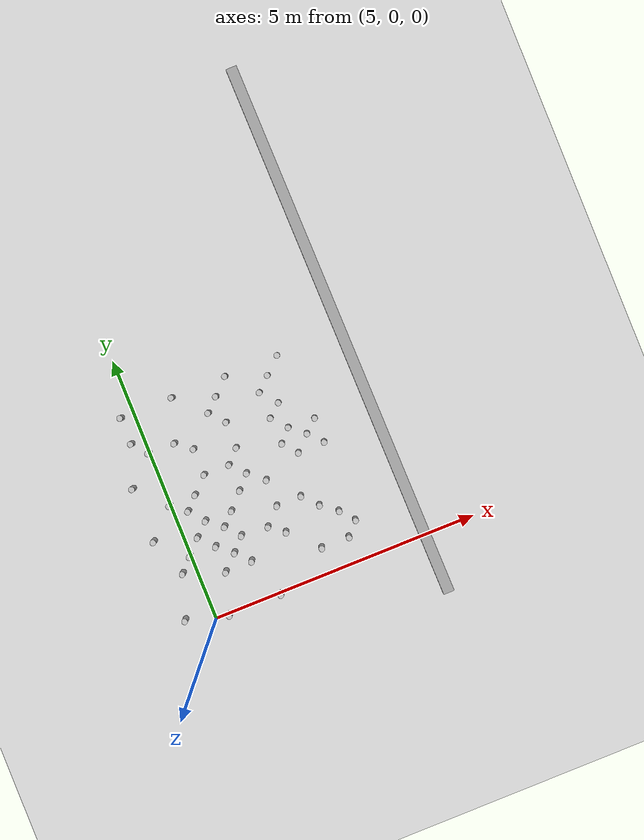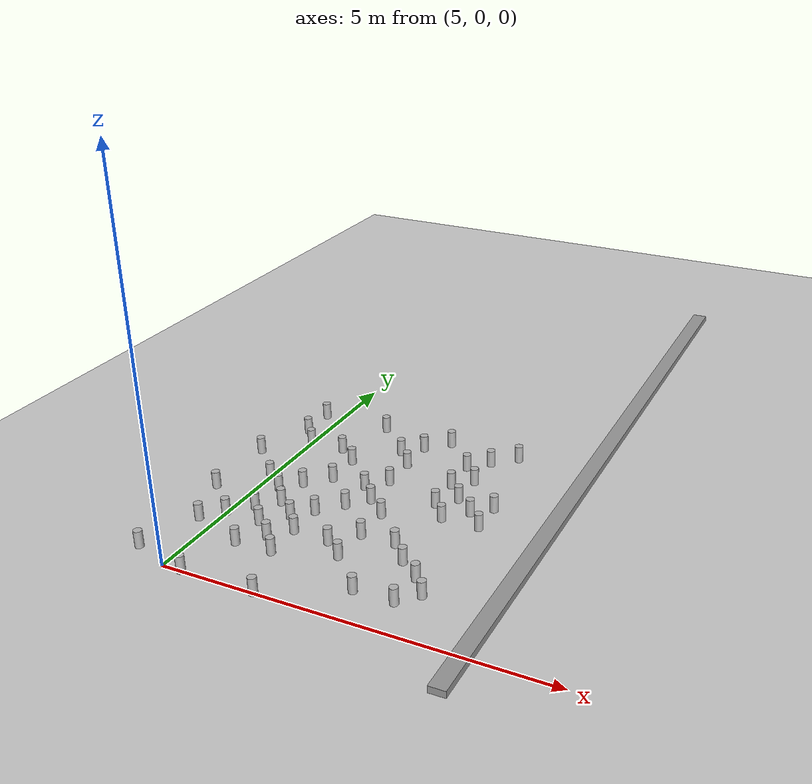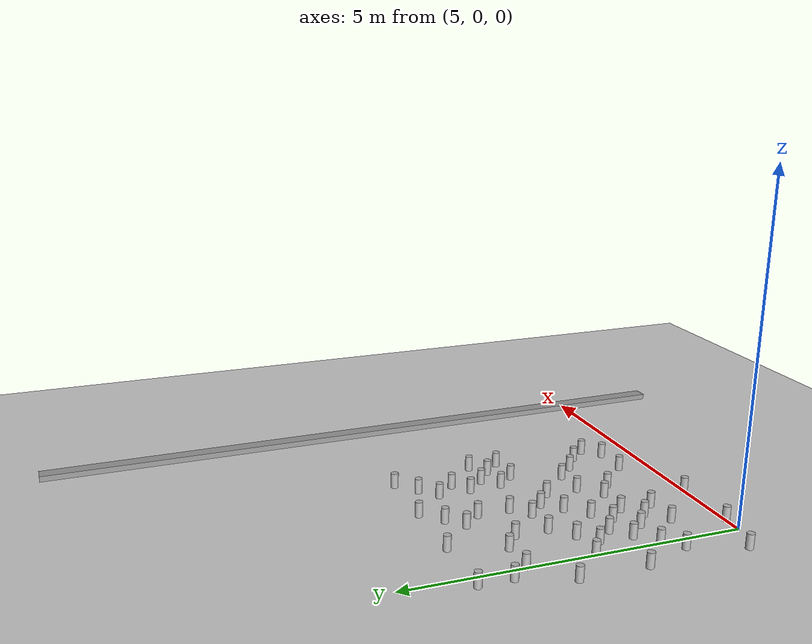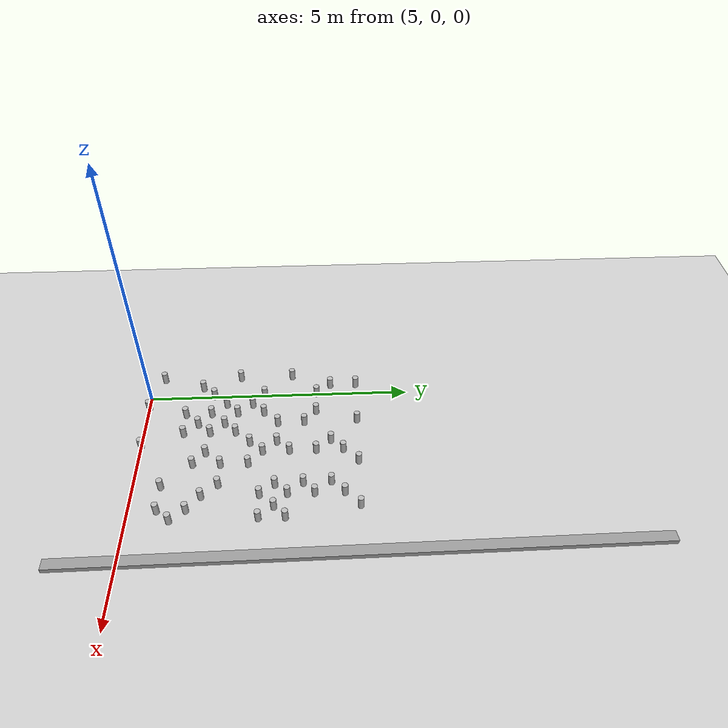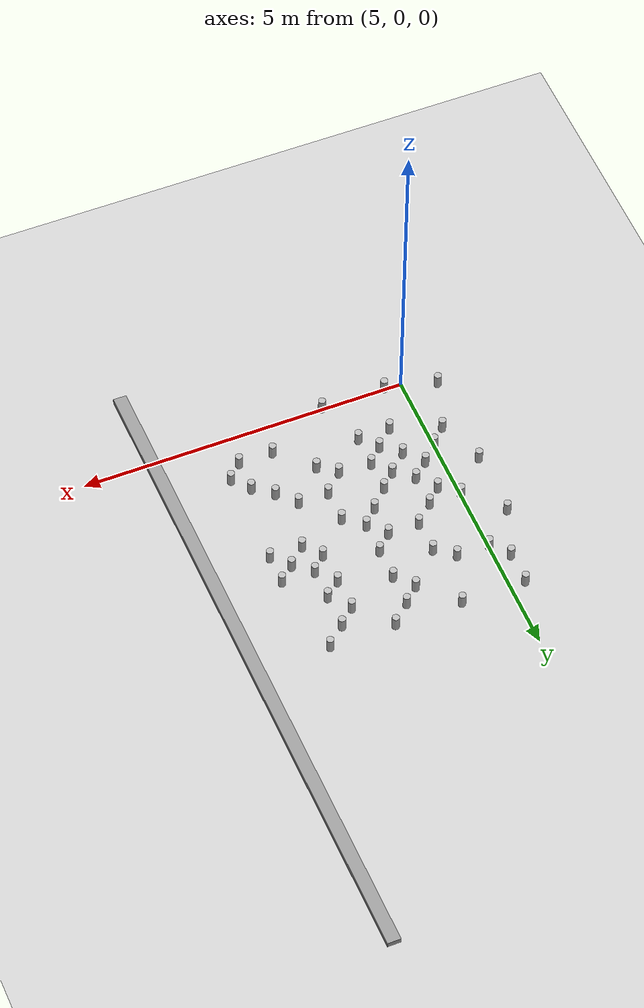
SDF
<sdf version="1.6">
 <world name="default">
  <model name="ground_plane">
   <static>1</static>
   <link name="link">
    <collision name="collision">
     <geometry><plane><normal>0 0 1</normal><size>100 100</size></plane></geometry>
     <surface><friction><ode><mu>100</mu><mu2>50</mu2></ode></friction></surface>
    </collision>
    <visual name="visual">
     <cast_shadows>0</cast_shadows>
     <geometry><plane><normal>0 0 1</normal><size>100 100</size></plane></geometry>
     <material>
      <script><uri>file://media/materials/scripts/gazebo.material</uri><name>Gazebo/Grey</name></script>
     </material>
    </visual>
   </link>
  </model>
  <model name="wall3">
   <static>1</static>
   <link name="link">
    <pose>0 0 0.42 0 -0 0</pose>
    <collision name="collision"><geometry><box><size>10 0.2 0.084</size></box></geometry></collision>
    <visual name="visual">
     <cast_shadows>0</cast_shadows>
     <geometry><box><size>10 0.2 0.084</size></box></geometry>
     <material>
      <script>
       <uri>model://grey_wall/materials/scripts</uri>
       <uri>model://grey_wall/materials/textures</uri>
       <name>vrc/grey_wall</name>
      </script>
     </material>
    </visual>
   </link>
   <pose>9.0 4.0 0 0 -0 -1.55905</pose>
  </model>
  <model name="can5.759015337364.0">
   <link name="link">
    <pose>0 0 0.115 0 -0 0</pose>
    <inertial>
     <mass>0.39</mass>
     <inertia><ixx>0.00058</ixx><ixy>0</ixy><ixz>0</ixz><iyy>0.00058</iyy><iyz>0</iyz><izz>0.00019</izz></inertia>
    </inertial>
    <collision name="collision">
     <geometry><cylinder><radius>0.055</radius><length>0.23</length></cylinder></geometry>
    </collision>
    <visual name="visual">
     <geometry><cylinder><radius>0.055</radius><length>0.23</length></cylinder></geometry>
     <material>
      <script>
       <uri>model://beer/materials/scripts</uri>
       <uri>model://beer/materials/textures</uri>
       <name>Beer/Diffuse</name>
      </script>
     </material>
    </visual>
   </link>
   <pose>5.75901533736 4.0 -2e-06 1e-06 0 -9.5e-05</pose>
  </model>
  <model name="can6.53.72370780713">
   <link name="link">
    <pose>0 0 0.115 0 -0 0</pose>
    <inertial>
     <mass>0.39</mass>
     <inertia><ixx>0.00058</ixx><ixy>0</ixy><ixz>0</ixz><iyy>0.00058</iyy><iyz>0</iyz><izz>0.00019</izz></inertia>
    </inertial>
    <collision name="collision">
     <geometry><cylinder><radius>0.055</radius><length>0.23</length></cylinder></geometry>
    </collision>
    <visual name="visual">
     <geometry><cylinder><radius>0.055</radius><length>0.23</length></cylinder></geometry>
     <material>
      <script>
       <uri>model://beer/materials/scripts</uri>
       <uri>model://beer/materials/textures</uri>
       <name>Beer/Diffuse</name>
      </script>
     </material>
    </visual>
   </link>
   <pose>6.5 3.72370780713 -2e-06 1e-06 0 -9.5e-05</pose>
  </model>
  <model name="can6.784772272632.0">
   <link name="link">
    <pose>0 0 0.115 0 -0 0</pose>
    <inertial>
     <mass>0.39</mass>
     <inertia><ixx>0.00058</ixx><ixy>0</ixy><ixz>0</ixz><iyy>0.00058</iyy><iyz>0</iyz><izz>0.00019</izz></inertia>
    </inertial>
    <collision name="collision">
     <geometry><cylinder><radius>0.055</radius><length>0.23</length></cylinder></geometry>
    </collision>
    <visual name="visual">
     <geometry><cylinder><radius>0.055</radius><length>0.23</length></cylinder></geometry>
     <material>
      <script>
       <uri>model://beer/materials/scripts</uri>
       <uri>model://beer/materials/textures</uri>
       <name>Beer/Diffuse</name>
      </script>
     </material>
    </visual>
   </link>
   <pose>6.78477227263 2.0 -2e-06 1e-06 0 -9.5e-05</pose>
  </model>
  <model name="can7.52.23811705391">
   <link name="link">
    <pose>0 0 0.115 0 -0 0</pose>
    <inertial>
     <mass>0.39</mass>
     <inertia><ixx>0.00058</ixx><ixy>0</ixy><ixz>0</ixz><iyy>0.00058</iyy><iyz>0</iyz><izz>0.00019</izz></inertia>
    </inertial>
    <collision name="collision">
     <geometry><cylinder><radius>0.055</radius><length>0.23</length></cylinder></geometry>
    </collision>
    <visual name="visual">
     <geometry><cylinder><radius>0.055</radius><length>0.23</length></cylinder></geometry>
     <material>
      <script>
       <uri>model://beer/materials/scripts</uri>
       <uri>model://beer/materials/textures</uri>
       <name>Beer/Diffuse</name>
      </script>
     </material>
    </visual>
   </link>
   <pose>7.5 2.23811705391 -2e-06 1e-06 0 -9.5e-05</pose>
  </model>
  <model name="can5.52.22546799315">
   <link name="link">
    <pose>0 0 0.115 0 -0 0</pose>
    <inertial>
     <mass>0.39</mass>
     <inertia><ixx>0.00058</ixx><ixy>0</ixy><ixz>0</ixz><iyy>0.00058</iyy><iyz>0</iyz><izz>0.00019</izz></inertia>
    </inertial>
    <collision name="collision">
     <geometry><cylinder><radius>0.055</radius><length>0.23</length></cylinder></geometry>
    </collision>
    <visual name="visual">
     <geometry><cylinder><radius>0.055</radius><length>0.23</length></cylinder></geometry>
     <material>
      <script>
       <uri>model://beer/materials/scripts</uri>
       <uri>model://beer/materials/textures</uri>
       <name>Beer/Diffuse</name>
      </script>
     </material>
    </visual>
   </link>
   <pose>5.5 2.22546799315 -2e-06 1e-06 0 -9.5e-05</pose>
  </model>
  <model name="can5.51.7250479158">
   <link name="link">
    <pose>0 0 0.115 0 -0 0</pose>
    <inertial>
     <mass>0.39</mass>
     <inertia><ixx>0.00058</ixx><ixy>0</ixy><ixz>0</ixz><iyy>0.00058</iyy><iyz>0</iyz><izz>0.00019</izz></inertia>
    </inertial>
    <collision name="collision">
     <geometry><cylinder><radius>0.055</radius><length>0.23</length></cylinder></geometry>
    </collision>
    <visual name="visual">
     <geometry><cylinder><radius>0.055</radius><length>0.23</length></cylinder></geometry>
     <material>
      <script>
       <uri>model://beer/materials/scripts</uri>
       <uri>model://beer/materials/textures</uri>
       <name>Beer/Diffuse</name>
      </script>
     </material>
    </visual>
   </link>
   <pose>5.5 1.7250479158 -2e-06 1e-06 0 -9.5e-05</pose>
  </model>
  <model name="can7.263469234763.0">
   <link name="link">
    <pose>0 0 0.115 0 -0 0</pose>
    <inertial>
     <mass>0.39</mass>
     <inertia><ixx>0.00058</ixx><ixy>0</ixy><ixz>0</ixz><iyy>0.00058</iyy><iyz>0</iyz><izz>0.00019</izz></inertia>
    </inertial>
    <collision name="collision">
     <geometry><cylinder><radius>0.055</radius><length>0.23</length></cylinder></geometry>
    </collision>
    <visual name="visual">
     <geometry><cylinder><radius>0.055</radius><length>0.23</length></cylinder></geometry>
     <material>
      <script>
       <uri>model://beer/materials/scripts</uri>
       <uri>model://beer/materials/textures</uri>
       <name>Beer/Diffuse</name>
      </script>
     </material>
    </visual>
   </link>
   <pose>7.26346923476 3.0 -2e-06 1e-06 0 -9.5e-05</pose>
  </model>
  <model name="can7.791522727644.0">
   <link name="link">
    <pose>0 0 0.115 0 -0 0</pose>
    <inertial>
     <mass>0.39</mass>
     <inertia><ixx>0.00058</ixx><ixy>0</ixy><ixz>0</ixz><iyy>0.00058</iyy><iyz>0</iyz><izz>0.00019</izz></inertia>
    </inertial>
    <collision name="collision">
     <geometry><cylinder><radius>0.055</radius><length>0.23</length></cylinder></geometry>
    </collision>
    <visual name="visual">
     <geometry><cylinder><radius>0.055</radius><length>0.23</length></cylinder></geometry>
     <material>
      <script>
       <uri>model://beer/materials/scripts</uri>
       <uri>model://beer/materials/textures</uri>
       <name>Beer/Diffuse</name>
      </script>
     </material>
    </visual>
   </link>
   <pose>7.79152272764 4.0 -2e-06 1e-06 0 -9.5e-05</pose>
  </model>
  <model name="can5.03.23023790909">
   <link name="link">
    <pose>0 0 0.115 0 -0 0</pose>
    <inertial>
     <mass>0.39</mass>
     <inertia><ixx>0.00058</ixx><ixy>0</ixy><ixz>0</ixz><iyy>0.00058</iyy><iyz>0</iyz><izz>0.00019</izz></inertia>
    </inertial>
    <collision name="collision">
     <geometry><cylinder><radius>0.055</radius><length>0.23</length></cylinder></geometry>
    </collision>
    <visual name="visual">
     <geometry><cylinder><radius>0.055</radius><length>0.23</length></cylinder></geometry>
     <material>
      <script>
       <uri>model://beer/materials/scripts</uri>
       <uri>model://beer/materials/textures</uri>
       <name>Beer/Diffuse</name>
      </script>
     </material>
    </visual>
   </link>
   <pose>5.0 3.23023790909 -2e-06 1e-06 0 -9.5e-05</pose>
  </model>
  <model name="can7.254135602160.5">
   <link name="link">
    <pose>0 0 0.115 0 -0 0</pose>
    <inertial>
     <mass>0.39</mass>
     <inertia><ixx>0.00058</ixx><ixy>0</ixy><ixz>0</ixz><iyy>0.00058</iyy><iyz>0</iyz><izz>0.00019</izz></inertia>
    </inertial>
    <collision name="collision">
     <geometry><cylinder><radius>0.055</radius><length>0.23</length></cylinder></geometry>
    </collision>
    <visual name="visual">
     <geometry><cylinder><radius>0.055</radius><length>0.23</length></cylinder></geometry>
     <material>
      <script>
       <uri>model://beer/materials/scripts</uri>
       <uri>model://beer/materials/textures</uri>
       <name>Beer/Diffuse</name>
      </script>
     </material>
    </visual>
   </link>
   <pose>7.25413560216 0.5 -2e-06 1e-06 0 -9.5e-05</pose>
  </model>
  <model name="can5.275226445652.0">
   <link name="link">
    <pose>0 0 0.115 0 -0 0</pose>
    <inertial>
     <mass>0.39</mass>
     <inertia><ixx>0.00058</ixx><ixy>0</ixy><ixz>0</ixz><iyy>0.00058</iyy><iyz>0</iyz><izz>0.00019</izz></inertia>
    </inertial>
    <collision name="collision">
     <geometry><cylinder><radius>0.055</radius><length>0.23</length></cylinder></geometry>
    </collision>
    <visual name="visual">
     <geometry><cylinder><radius>0.055</radius><length>0.23</length></cylinder></geometry>
     <material>
      <script>
       <uri>model://beer/materials/scripts</uri>
       <uri>model://beer/materials/textures</uri>
       <name>Beer/Diffuse</name>
      </script>
     </material>
    </visual>
   </link>
   <pose>5.27522644565 2.0 -2e-06 1e-06 0 -9.5e-05</pose>
  </model>
  <model name="can5.50.739224365142">
   <link name="link">
    <pose>0 0 0.115 0 -0 0</pose>
    <inertial>
     <mass>0.39</mass>
     <inertia><ixx>0.00058</ixx><ixy>0</ixy><ixz>0</ixz><iyy>0.00058</iyy><iyz>0</iyz><izz>0.00019</izz></inertia>
    </inertial>
    <collision name="collision">
     <geometry><cylinder><radius>0.055</radius><length>0.23</length></cylinder></geometry>
    </collision>
    <visual name="visual">
     <geometry><cylinder><radius>0.055</radius><length>0.23</length></cylinder></geometry>
     <material>
      <script>
       <uri>model://beer/materials/scripts</uri>
       <uri>model://beer/materials/textures</uri>
       <name>Beer/Diffuse</name>
      </script>
     </material>
    </visual>
   </link>
   <pose>5.5 0.739224365142 -2e-06 1e-06 0 -9.5e-05</pose>
  </model>
  <model name="can7.251097830661.5">
   <link name="link">
    <pose>0 0 0.115 0 -0 0</pose>
    <inertial>
     <mass>0.39</mass>
     <inertia><ixx>0.00058</ixx><ixy>0</ixy><ixz>0</ixz><iyy>0.00058</iyy><iyz>0</iyz><izz>0.00019</izz></inertia>
    </inertial>
    <collision name="collision">
     <geometry><cylinder><radius>0.055</radius><length>0.23</length></cylinder></geometry>
    </collision>
    <visual name="visual">
     <geometry><cylinder><radius>0.055</radius><length>0.23</length></cylinder></geometry>
     <material>
      <script>
       <uri>model://beer/materials/scripts</uri>
       <uri>model://beer/materials/textures</uri>
       <name>Beer/Diffuse</name>
      </script>
     </material>
    </visual>
   </link>
   <pose>7.25109783066 1.5 -2e-06 1e-06 0 -9.5e-05</pose>
  </model>
  <model name="can6.786869994941.5">
   <link name="link">
    <pose>0 0 0.115 0 -0 0</pose>
    <inertial>
     <mass>0.39</mass>
     <inertia><ixx>0.00058</ixx><ixy>0</ixy><ixz>0</ixz><iyy>0.00058</iyy><iyz>0</iyz><izz>0.00019</izz></inertia>
    </inertial>
    <collision name="collision">
     <geometry><cylinder><radius>0.055</radius><length>0.23</length></cylinder></geometry>
    </collision>
    <visual name="visual">
     <geometry><cylinder><radius>0.055</radius><length>0.23</length></cylinder></geometry>
     <material>
      <script>
       <uri>model://beer/materials/scripts</uri>
       <uri>model://beer/materials/textures</uri>
       <name>Beer/Diffuse</name>
      </script>
     </material>
    </visual>
   </link>
   <pose>6.78686999494 1.5 -2e-06 1e-06 0 -9.5e-05</pose>
  </model>
  <model name="can4.50.206467941657">
   <link name="link">
    <pose>0 0 0.115 0 -0 0</pose>
    <inertial>
     <mass>0.39</mass>
     <inertia><ixx>0.00058</ixx><ixy>0</ixy><ixz>0</ixz><iyy>0.00058</iyy><iyz>0</iyz><izz>0.00019</izz></inertia>
    </inertial>
    <collision name="collision">
     <geometry><cylinder><radius>0.055</radius><length>0.23</length></cylinder></geometry>
    </collision>
    <visual name="visual">
     <geometry><cylinder><radius>0.055</radius><length>0.23</length></cylinder></geometry>
     <material>
      <script>
       <uri>model://beer/materials/scripts</uri>
       <uri>model://beer/materials/textures</uri>
       <name>Beer/Diffuse</name>
      </script>
     </material>
    </visual>
   </link>
   <pose>4.5 0.206467941657 -2e-06 1e-06 0 -9.5e-05</pose>
  </model>
  <model name="can7.53.73295219711">
   <link name="link">
    <pose>0 0 0.115 0 -0 0</pose>
    <inertial>
     <mass>0.39</mass>
     <inertia><ixx>0.00058</ixx><ixy>0</ixy><ixz>0</ixz><iyy>0.00058</iyy><iyz>0</iyz><izz>0.00019</izz></inertia>
    </inertial>
    <collision name="collision">
     <geometry><cylinder><radius>0.055</radius><length>0.23</length></cylinder></geometry>
    </collision>
    <visual name="visual">
     <geometry><cylinder><radius>0.055</radius><length>0.23</length></cylinder></geometry>
     <material>
      <script>
       <uri>model://beer/materials/scripts</uri>
       <uri>model://beer/materials/textures</uri>
       <name>Beer/Diffuse</name>
      </script>
     </material>
    </visual>
   </link>
   <pose>7.5 3.73295219711 -2e-06 1e-06 0 -9.5e-05</pose>
  </model>
  <model name="can4.777997475833.5">
   <link name="link">
    <pose>0 0 0.115 0 -0 0</pose>
    <inertial>
     <mass>0.39</mass>
     <inertia><ixx>0.00058</ixx><ixy>0</ixy><ixz>0</ixz><iyy>0.00058</iyy><iyz>0</iyz><izz>0.00019</izz></inertia>
    </inertial>
    <collision name="collision">
     <geometry><cylinder><radius>0.055</radius><length>0.23</length></cylinder></geometry>
    </collision>
    <visual name="visual">
     <geometry><cylinder><radius>0.055</radius><length>0.23</length></cylinder></geometry>
     <material>
      <script>
       <uri>model://beer/materials/scripts</uri>
       <uri>model://beer/materials/textures</uri>
       <name>Beer/Diffuse</name>
      </script>
     </material>
    </visual>
   </link>
   <pose>4.77799747583 3.5 -2e-06 1e-06 0 -9.5e-05</pose>
  </model>
  <model name="can7.252720176233.5">
   <link name="link">
    <pose>0 0 0.115 0 -0 0</pose>
    <inertial>
     <mass>0.39</mass>
     <inertia><ixx>0.00058</ixx><ixy>0</ixy><ixz>0</ixz><iyy>0.00058</iyy><iyz>0</iyz><izz>0.00019</izz></inertia>
    </inertial>
    <collision name="collision">
     <geometry><cylinder><radius>0.055</radius><length>0.23</length></cylinder></geometry>
    </collision>
    <visual name="visual">
     <geometry><cylinder><radius>0.055</radius><length>0.23</length></cylinder></geometry>
     <material>
      <script>
       <uri>model://beer/materials/scripts</uri>
       <uri>model://beer/materials/textures</uri>
       <name>Beer/Diffuse</name>
      </script>
     </material>
    </visual>
   </link>
   <pose>7.25272017623 3.5 -2e-06 1e-06 0 -9.5e-05</pose>
  </model>
  <model name="can4.770796623031.0">
   <link name="link">
    <pose>0 0 0.115 0 -0 0</pose>
    <inertial>
     <mass>0.39</mass>
     <inertia><ixx>0.00058</ixx><ixy>0</ixy><ixz>0</ixz><iyy>0.00058</iyy><iyz>0</iyz><izz>0.00019</izz></inertia>
    </inertial>
    <collision name="collision">
     <geometry><cylinder><radius>0.055</radius><length>0.23</length></cylinder></geometry>
    </collision>
    <visual name="visual">
     <geometry><cylinder><radius>0.055</radius><length>0.23</length></cylinder></geometry>
     <material>
      <script>
       <uri>model://beer/materials/scripts</uri>
       <uri>model://beer/materials/textures</uri>
       <name>Beer/Diffuse</name>
      </script>
     </material>
    </visual>
   </link>
   <pose>4.77079662303 1.0 -2e-06 1e-06 0 -9.5e-05</pose>
  </model>
  <model name="can7.778724515520.5">
   <link name="link">
    <pose>0 0 0.115 0 -0 0</pose>
    <inertial>
     <mass>0.39</mass>
     <inertia><ixx>0.00058</ixx><ixy>0</ixy><ixz>0</ixz><iyy>0.00058</iyy><iyz>0</iyz><izz>0.00019</izz></inertia>
    </inertial>
    <collision name="collision">
     <geometry><cylinder><radius>0.055</radius><length>0.23</length></cylinder></geometry>
    </collision>
    <visual name="visual">
     <geometry><cylinder><radius>0.055</radius><length>0.23</length></cylinder></geometry>
     <material>
      <script>
       <uri>model://beer/materials/scripts</uri>
       <uri>model://beer/materials/textures</uri>
       <name>Beer/Diffuse</name>
      </script>
     </material>
    </visual>
   </link>
   <pose>7.77872451552 0.5 -2e-06 1e-06 0 -9.5e-05</pose>
  </model>
  <model name="can6.270291336552.0">
   <link name="link">
    <pose>0 0 0.115 0 -0 0</pose>
    <inertial>
     <mass>0.39</mass>
     <inertia><ixx>0.00058</ixx><ixy>0</ixy><ixz>0</ixz><iyy>0.00058</iyy><iyz>0</iyz><izz>0.00019</izz></inertia>
    </inertial>
    <collision name="collision">
     <geometry><cylinder><radius>0.055</radius><length>0.23</length></cylinder></geometry>
    </collision>
    <visual name="visual">
     <geometry><cylinder><radius>0.055</radius><length>0.23</length></cylinder></geometry>
     <material>
      <script>
       <uri>model://beer/materials/scripts</uri>
       <uri>model://beer/materials/textures</uri>
       <name>Beer/Diffuse</name>
      </script>
     </material>
    </visual>
   </link>
   <pose>6.27029133655 2.0 -2e-06 1e-06 0 -9.5e-05</pose>
  </model>
  <model name="can7.52.72669840065">
   <link name="link">
    <pose>0 0 0.115 0 -0 0</pose>
    <inertial>
     <mass>0.39</mass>
     <inertia><ixx>0.00058</ixx><ixy>0</ixy><ixz>0</ixz><iyy>0.00058</iyy><iyz>0</iyz><izz>0.00019</izz></inertia>
    </inertial>
    <collision name="collision">
     <geometry><cylinder><radius>0.055</radius><length>0.23</length></cylinder></geometry>
    </collision>
    <visual name="visual">
     <geometry><cylinder><radius>0.055</radius><length>0.23</length></cylinder></geometry>
     <material>
      <script>
       <uri>model://beer/materials/scripts</uri>
       <uri>model://beer/materials/textures</uri>
       <name>Beer/Diffuse</name>
      </script>
     </material>
    </visual>
   </link>
   <pose>7.5 2.72669840065 -2e-06 1e-06 0 -9.5e-05</pose>
  </model>
  <model name="can5.53.22252287006">
   <link name="link">
    <pose>0 0 0.115 0 -0 0</pose>
    <inertial>
     <mass>0.39</mass>
     <inertia><ixx>0.00058</ixx><ixy>0</ixy><ixz>0</ixz><iyy>0.00058</iyy><iyz>0</iyz><izz>0.00019</izz></inertia>
    </inertial>
    <collision name="collision">
     <geometry><cylinder><radius>0.055</radius><length>0.23</length></cylinder></geometry>
    </collision>
    <visual name="visual">
     <geometry><cylinder><radius>0.055</radius><length>0.23</length></cylinder></geometry>
     <material>
      <script>
       <uri>model://beer/materials/scripts</uri>
       <uri>model://beer/materials/textures</uri>
       <name>Beer/Diffuse</name>
      </script>
     </material>
    </visual>
   </link>
   <pose>5.5 3.22252287006 -2e-06 1e-06 0 -9.5e-05</pose>
  </model>
  <model name="can5.781141610053.0">
   <link name="link">
    <pose>0 0 0.115 0 -0 0</pose>
    <inertial>
     <mass>0.39</mass>
     <inertia><ixx>0.00058</ixx><ixy>0</ixy><ixz>0</ixz><iyy>0.00058</iyy><iyz>0</iyz><izz>0.00019</izz></inertia>
    </inertial>
    <collision name="collision">
     <geometry><cylinder><radius>0.055</radius><length>0.23</length></cylinder></geometry>
    </collision>
    <visual name="visual">
     <geometry><cylinder><radius>0.055</radius><length>0.23</length></cylinder></geometry>
     <material>
      <script>
       <uri>model://beer/materials/scripts</uri>
       <uri>model://beer/materials/textures</uri>
       <name>Beer/Diffuse</name>
      </script>
     </material>
    </visual>
   </link>
   <pose>5.78114161005 3.0 -2e-06 1e-06 0 -9.5e-05</pose>
  </model>
  <model name="can7.786855252831.0">
   <link name="link">
    <pose>0 0 0.115 0 -0 0</pose>
    <inertial>
     <mass>0.39</mass>
     <inertia><ixx>0.00058</ixx><ixy>0</ixy><ixz>0</ixz><iyy>0.00058</iyy><iyz>0</iyz><izz>0.00019</izz></inertia>
    </inertial>
    <collision name="collision">
     <geometry><cylinder><radius>0.055</radius><length>0.23</length></cylinder></geometry>
    </collision>
    <visual name="visual">
     <geometry><cylinder><radius>0.055</radius><length>0.23</length></cylinder></geometry>
     <material>
      <script>
       <uri>model://beer/materials/scripts</uri>
       <uri>model://beer/materials/textures</uri>
       <name>Beer/Diffuse</name>
      </script>
     </material>
    </visual>
   </link>
   <pose>7.78685525283 1.0 -2e-06 1e-06 0 -9.5e-05</pose>
  </model>
  <model name="can6.53.22664619245">
   <link name="link">
    <pose>0 0 0.115 0 -0 0</pose>
    <inertial>
     <mass>0.39</mass>
     <inertia><ixx>0.00058</ixx><ixy>0</ixy><ixz>0</ixz><iyy>0.00058</iyy><iyz>0</iyz><izz>0.00019</izz></inertia>
    </inertial>
    <collision name="collision">
     <geometry><cylinder><radius>0.055</radius><length>0.23</length></cylinder></geometry>
    </collision>
    <visual name="visual">
     <geometry><cylinder><radius>0.055</radius><length>0.23</length></cylinder></geometry>
     <material>
      <script>
       <uri>model://beer/materials/scripts</uri>
       <uri>model://beer/materials/textures</uri>
       <name>Beer/Diffuse</name>
      </script>
     </material>
    </visual>
   </link>
   <pose>6.5 3.22664619245 -2e-06 1e-06 0 -9.5e-05</pose>
  </model>
  <model name="can7.53.20500674217">
   <link name="link">
    <pose>0 0 0.115 0 -0 0</pose>
    <inertial>
     <mass>0.39</mass>
     <inertia><ixx>0.00058</ixx><ixy>0</ixy><ixz>0</ixz><iyy>0.00058</iyy><iyz>0</iyz><izz>0.00019</izz></inertia>
    </inertial>
    <collision name="collision">
     <geometry><cylinder><radius>0.055</radius><length>0.23</length></cylinder></geometry>
    </collision>
    <visual name="visual">
     <geometry><cylinder><radius>0.055</radius><length>0.23</length></cylinder></geometry>
     <material>
      <script>
       <uri>model://beer/materials/scripts</uri>
       <uri>model://beer/materials/textures</uri>
       <name>Beer/Diffuse</name>
      </script>
     </material>
    </visual>
   </link>
   <pose>7.5 3.20500674217 -2e-06 1e-06 0 -9.5e-05</pose>
  </model>
  <model name="can5.778484194321.5">
   <link name="link">
    <pose>0 0 0.115 0 -0 0</pose>
    <inertial>
     <mass>0.39</mass>
     <inertia><ixx>0.00058</ixx><ixy>0</ixy><ixz>0</ixz><iyy>0.00058</iyy><iyz>0</iyz><izz>0.00019</izz></inertia>
    </inertial>
    <collision name="collision">
     <geometry><cylinder><radius>0.055</radius><length>0.23</length></cylinder></geometry>
    </collision>
    <visual name="visual">
     <geometry><cylinder><radius>0.055</radius><length>0.23</length></cylinder></geometry>
     <material>
      <script>
       <uri>model://beer/materials/scripts</uri>
       <uri>model://beer/materials/textures</uri>
       <name>Beer/Diffuse</name>
      </script>
     </material>
    </visual>
   </link>
   <pose>5.77848419432 1.5 -2e-06 1e-06 0 -9.5e-05</pose>
  </model>
  <model name="can8.02.70598190799">
   <link name="link">
    <pose>0 0 0.115 0 -0 0</pose>
    <inertial>
     <mass>0.39</mass>
     <inertia><ixx>0.00058</ixx><ixy>0</ixy><ixz>0</ixz><iyy>0.00058</iyy><iyz>0</iyz><izz>0.00019</izz></inertia>
    </inertial>
    <collision name="collision">
     <geometry><cylinder><radius>0.055</radius><length>0.23</length></cylinder></geometry>
    </collision>
    <visual name="visual">
     <geometry><cylinder><radius>0.055</radius><length>0.23</length></cylinder></geometry>
     <material>
      <script>
       <uri>model://beer/materials/scripts</uri>
       <uri>model://beer/materials/textures</uri>
       <name>Beer/Diffuse</name>
      </script>
     </material>
    </visual>
   </link>
   <pose>8.0 2.70598190799 -2e-06 1e-06 0 -9.5e-05</pose>
  </model>
  <model name="can6.52.24552211378">
   <link name="link">
    <pose>0 0 0.115 0 -0 0</pose>
    <inertial>
     <mass>0.39</mass>
     <inertia><ixx>0.00058</ixx><ixy>0</ixy><ixz>0</ixz><iyy>0.00058</iyy><iyz>0</iyz><izz>0.00019</izz></inertia>
    </inertial>
    <collision name="collision">
     <geometry><cylinder><radius>0.055</radius><length>0.23</length></cylinder></geometry>
    </collision>
    <visual name="visual">
     <geometry><cylinder><radius>0.055</radius><length>0.23</length></cylinder></geometry>
     <material>
      <script>
       <uri>model://beer/materials/scripts</uri>
       <uri>model://beer/materials/textures</uri>
       <name>Beer/Diffuse</name>
      </script>
     </material>
    </visual>
   </link>
   <pose>6.5 2.24552211378 -2e-06 1e-06 0 -9.5e-05</pose>
  </model>
  <model name="can6.52.73725445978">
   <link name="link">
    <pose>0 0 0.115 0 -0 0</pose>
    <inertial>
     <mass>0.39</mass>
     <inertia><ixx>0.00058</ixx><ixy>0</ixy><ixz>0</ixz><iyy>0.00058</iyy><iyz>0</iyz><izz>0.00019</izz></inertia>
    </inertial>
    <collision name="collision">
     <geometry><cylinder><radius>0.055</radius><length>0.23</length></cylinder></geometry>
    </collision>
    <visual name="visual">
     <geometry><cylinder><radius>0.055</radius><length>0.23</length></cylinder></geometry>
     <material>
      <script>
       <uri>model://beer/materials/scripts</uri>
       <uri>model://beer/materials/textures</uri>
       <name>Beer/Diffuse</name>
      </script>
     </material>
    </visual>
   </link>
   <pose>6.5 2.73725445978 -2e-06 1e-06 0 -9.5e-05</pose>
  </model>
  <model name="can6.263860602973.5">
   <link name="link">
    <pose>0 0 0.115 0 -0 0</pose>
    <inertial>
     <mass>0.39</mass>
     <inertia><ixx>0.00058</ixx><ixy>0</ixy><ixz>0</ixz><iyy>0.00058</iyy><iyz>0</iyz><izz>0.00019</izz></inertia>
    </inertial>
    <collision name="collision">
     <geometry><cylinder><radius>0.055</radius><length>0.23</length></cylinder></geometry>
    </collision>
    <visual name="visual">
     <geometry><cylinder><radius>0.055</radius><length>0.23</length></cylinder></geometry>
     <material>
      <script>
       <uri>model://beer/materials/scripts</uri>
       <uri>model://beer/materials/textures</uri>
       <name>Beer/Diffuse</name>
      </script>
     </material>
    </visual>
   </link>
   <pose>6.26386060297 3.5 -2e-06 1e-06 0 -9.5e-05</pose>
  </model>
  <model name="can4.775765396464.0">
   <link name="link">
    <pose>0 0 0.115 0 -0 0</pose>
    <inertial>
     <mass>0.39</mass>
     <inertia><ixx>0.00058</ixx><ixy>0</ixy><ixz>0</ixz><iyy>0.00058</iyy><iyz>0</iyz><izz>0.00019</izz></inertia>
    </inertial>
    <collision name="collision">
     <geometry><cylinder><radius>0.055</radius><length>0.23</length></cylinder></geometry>
    </collision>
    <visual name="visual">
     <geometry><cylinder><radius>0.055</radius><length>0.23</length></cylinder></geometry>
     <material>
      <script>
       <uri>model://beer/materials/scripts</uri>
       <uri>model://beer/materials/textures</uri>
       <name>Beer/Diffuse</name>
      </script>
     </material>
    </visual>
   </link>
   <pose>4.77576539646 4.0 -2e-06 1e-06 0 -9.5e-05</pose>
  </model>
  <model name="can7.76869332152.5">
   <link name="link">
    <pose>0 0 0.115 0 -0 0</pose>
    <inertial>
     <mass>0.39</mass>
     <inertia><ixx>0.00058</ixx><ixy>0</ixy><ixz>0</ixz><iyy>0.00058</iyy><iyz>0</iyz><izz>0.00019</izz></inertia>
    </inertial>
    <collision name="collision">
     <geometry><cylinder><radius>0.055</radius><length>0.23</length></cylinder></geometry>
    </collision>
    <visual name="visual">
     <geometry><cylinder><radius>0.055</radius><length>0.23</length></cylinder></geometry>
     <material>
      <script>
       <uri>model://beer/materials/scripts</uri>
       <uri>model://beer/materials/textures</uri>
       <name>Beer/Diffuse</name>
      </script>
     </material>
    </visual>
   </link>
   <pose>7.7686933215 2.5 -2e-06 1e-06 0 -9.5e-05</pose>
  </model>
  <model name="can6.266906503840.0">
   <link name="link">
    <pose>0 0 0.115 0 -0 0</pose>
    <inertial>
     <mass>0.39</mass>
     <inertia><ixx>0.00058</ixx><ixy>0</ixy><ixz>0</ixz><iyy>0.00058</iyy><iyz>0</iyz><izz>0.00019</izz></inertia>
    </inertial>
    <collision name="collision">
     <geometry><cylinder><radius>0.055</radius><length>0.23</length></cylinder></geometry>
    </collision>
    <visual name="visual">
     <geometry><cylinder><radius>0.055</radius><length>0.23</length></cylinder></geometry>
     <material>
      <script>
       <uri>model://beer/materials/scripts</uri>
       <uri>model://beer/materials/textures</uri>
       <name>Beer/Diffuse</name>
      </script>
     </material>
    </visual>
   </link>
   <pose>6.26690650384 0.0 -2e-06 1e-06 0 -9.5e-05</pose>
  </model>
  <model name="can6.01.71689555803">
   <link name="link">
    <pose>0 0 0.115 0 -0 0</pose>
    <inertial>
     <mass>0.39</mass>
     <inertia><ixx>0.00058</ixx><ixy>0</ixy><ixz>0</ixz><iyy>0.00058</iyy><iyz>0</iyz><izz>0.00019</izz></inertia>
    </inertial>
    <collision name="collision">
     <geometry><cylinder><radius>0.055</radius><length>0.23</length></cylinder></geometry>
    </collision>
    <visual name="visual">
     <geometry><cylinder><radius>0.055</radius><length>0.23</length></cylinder></geometry>
     <material>
      <script>
       <uri>model://beer/materials/scripts</uri>
       <uri>model://beer/materials/textures</uri>
       <name>Beer/Diffuse</name>
      </script>
     </material>
    </visual>
   </link>
   <pose>6.0 1.71689555803 -2e-06 1e-06 0 -9.5e-05</pose>
  </model>
  <model name="can7.51.22574001531">
   <link name="link">
    <pose>0 0 0.115 0 -0 0</pose>
    <inertial>
     <mass>0.39</mass>
     <inertia><ixx>0.00058</ixx><ixy>0</ixy><ixz>0</ixz><iyy>0.00058</iyy><iyz>0</iyz><izz>0.00019</izz></inertia>
    </inertial>
    <collision name="collision">
     <geometry><cylinder><radius>0.055</radius><length>0.23</length></cylinder></geometry>
    </collision>
    <visual name="visual">
     <geometry><cylinder><radius>0.055</radius><length>0.23</length></cylinder></geometry>
     <material>
      <script>
       <uri>model://beer/materials/scripts</uri>
       <uri>model://beer/materials/textures</uri>
       <name>Beer/Diffuse</name>
      </script>
     </material>
    </visual>
   </link>
   <pose>7.5 1.22574001531 -2e-06 1e-06 0 -9.5e-05</pose>
  </model>
  <model name="can5.785847671812.5">
   <link name="link">
    <pose>0 0 0.115 0 -0 0</pose>
    <inertial>
     <mass>0.39</mass>
     <inertia><ixx>0.00058</ixx><ixy>0</ixy><ixz>0</ixz><iyy>0.00058</iyy><iyz>0</iyz><izz>0.00019</izz></inertia>
    </inertial>
    <collision name="collision">
     <geometry><cylinder><radius>0.055</radius><length>0.23</length></cylinder></geometry>
    </collision>
    <visual name="visual">
     <geometry><cylinder><radius>0.055</radius><length>0.23</length></cylinder></geometry>
     <material>
      <script>
       <uri>model://beer/materials/scripts</uri>
       <uri>model://beer/materials/textures</uri>
       <name>Beer/Diffuse</name>
      </script>
     </material>
    </visual>
   </link>
   <pose>5.78584767181 2.5 -2e-06 1e-06 0 -9.5e-05</pose>
  </model>
  <model name="can6.263647985952.5">
   <link name="link">
    <pose>0 0 0.115 0 -0 0</pose>
    <inertial>
     <mass>0.39</mass>
     <inertia><ixx>0.00058</ixx><ixy>0</ixy><ixz>0</ixz><iyy>0.00058</iyy><iyz>0</iyz><izz>0.00019</izz></inertia>
    </inertial>
    <collision name="collision">
     <geometry><cylinder><radius>0.055</radius><length>0.23</length></cylinder></geometry>
    </collision>
    <visual name="visual">
     <geometry><cylinder><radius>0.055</radius><length>0.23</length></cylinder></geometry>
     <material>
      <script>
       <uri>model://beer/materials/scripts</uri>
       <uri>model://beer/materials/textures</uri>
       <name>Beer/Diffuse</name>
      </script>
     </material>
    </visual>
   </link>
   <pose>6.26364798595 2.5 -2e-06 1e-06 0 -9.5e-05</pose>
  </model>
  <model name="can5.51.23026536447">
   <link name="link">
    <pose>0 0 0.115 0 -0 0</pose>
    <inertial>
     <mass>0.39</mass>
     <inertia><ixx>0.00058</ixx><ixy>0</ixy><ixz>0</ixz><iyy>0.00058</iyy><iyz>0</iyz><izz>0.00019</izz></inertia>
    </inertial>
    <collision name="collision">
     <geometry><cylinder><radius>0.055</radius><length>0.23</length></cylinder></geometry>
    </collision>
    <visual name="visual">
     <geometry><cylinder><radius>0.055</radius><length>0.23</length></cylinder></geometry>
     <material>
      <script>
       <uri>model://beer/materials/scripts</uri>
       <uri>model://beer/materials/textures</uri>
       <name>Beer/Diffuse</name>
      </script>
     </material>
    </visual>
   </link>
   <pose>5.5 1.23026536447 -2e-06 1e-06 0 -9.5e-05</pose>
  </model>
  <model name="can5.770843347211.0">
   <link name="link">
    <pose>0 0 0.115 0 -0 0</pose>
    <inertial>
     <mass>0.39</mass>
     <inertia><ixx>0.00058</ixx><ixy>0</ixy><ixz>0</ixz><iyy>0.00058</iyy><iyz>0</iyz><izz>0.00019</izz></inertia>
    </inertial>
    <collision name="collision">
     <geometry><cylinder><radius>0.055</radius><length>0.23</length></cylinder></geometry>
    </collision>
    <visual name="visual">
     <geometry><cylinder><radius>0.055</radius><length>0.23</length></cylinder></geometry>
     <material>
      <script>
       <uri>model://beer/materials/scripts</uri>
       <uri>model://beer/materials/textures</uri>
       <name>Beer/Diffuse</name>
      </script>
     </material>
    </visual>
   </link>
   <pose>5.77084334721 1.0 -2e-06 1e-06 0 -9.5e-05</pose>
  </model>
  <model name="can5.01.23965930622">
   <link name="link">
    <pose>0 0 0.115 0 -0 0</pose>
    <inertial>
     <mass>0.39</mass>
     <inertia><ixx>0.00058</ixx><ixy>0</ixy><ixz>0</ixz><iyy>0.00058</iyy><iyz>0</iyz><izz>0.00019</izz></inertia>
    </inertial>
    <collision name="collision">
     <geometry><cylinder><radius>0.055</radius><length>0.23</length></cylinder></geometry>
    </collision>
    <visual name="visual">
     <geometry><cylinder><radius>0.055</radius><length>0.23</length></cylinder></geometry>
     <material>
      <script>
       <uri>model://beer/materials/scripts</uri>
       <uri>model://beer/materials/textures</uri>
       <name>Beer/Diffuse</name>
      </script>
     </material>
    </visual>
   </link>
   <pose>5.0 1.23965930622 -2e-06 1e-06 0 -9.5e-05</pose>
  </model>
  <model name="can4.51.72336315757">
   <link name="link">
    <pose>0 0 0.115 0 -0 0</pose>
    <inertial>
     <mass>0.39</mass>
     <inertia><ixx>0.00058</ixx><ixy>0</ixy><ixz>0</ixz><iyy>0.00058</iyy><iyz>0</iyz><izz>0.00019</izz></inertia>
    </inertial>
    <collision name="collision">
     <geometry><cylinder><radius>0.055</radius><length>0.23</length></cylinder></geometry>
    </collision>
    <visual name="visual">
     <geometry><cylinder><radius>0.055</radius><length>0.23</length></cylinder></geometry>
     <material>
      <script>
       <uri>model://beer/materials/scripts</uri>
       <uri>model://beer/materials/textures</uri>
       <name>Beer/Diffuse</name>
      </script>
     </material>
    </visual>
   </link>
   <pose>4.5 1.72336315757 -2e-06 1e-06 0 -9.5e-05</pose>
  </model>
  <model name="can5.255095217761.5">
   <link name="link">
    <pose>0 0 0.115 0 -0 0</pose>
    <inertial>
     <mass>0.39</mass>
     <inertia><ixx>0.00058</ixx><ixy>0</ixy><ixz>0</ixz><iyy>0.00058</iyy><iyz>0</iyz><izz>0.00019</izz></inertia>
    </inertial>
    <collision name="collision">
     <geometry><cylinder><radius>0.055</radius><length>0.23</length></cylinder></geometry>
    </collision>
    <visual name="visual">
     <geometry><cylinder><radius>0.055</radius><length>0.23</length></cylinder></geometry>
     <material>
      <script>
       <uri>model://beer/materials/scripts</uri>
       <uri>model://beer/materials/textures</uri>
       <name>Beer/Diffuse</name>
      </script>
     </material>
    </visual>
   </link>
   <pose>5.25509521776 1.5 -2e-06 1e-06 0 -9.5e-05</pose>
  </model>
  <model name="can7.284409828372.5">
   <link name="link">
    <pose>0 0 0.115 0 -0 0</pose>
    <inertial>
     <mass>0.39</mass>
     <inertia><ixx>0.00058</ixx><ixy>0</ixy><ixz>0</ixz><iyy>0.00058</iyy><iyz>0</iyz><izz>0.00019</izz></inertia>
    </inertial>
    <collision name="collision">
     <geometry><cylinder><radius>0.055</radius><length>0.23</length></cylinder></geometry>
    </collision>
    <visual name="visual">
     <geometry><cylinder><radius>0.055</radius><length>0.23</length></cylinder></geometry>
     <material>
      <script>
       <uri>model://beer/materials/scripts</uri>
       <uri>model://beer/materials/textures</uri>
       <name>Beer/Diffuse</name>
      </script>
     </material>
    </visual>
   </link>
   <pose>7.28440982837 2.5 -2e-06 1e-06 0 -9.5e-05</pose>
  </model>
  <model name="can6.00.74799400759">
   <link name="link">
    <pose>0 0 0.115 0 -0 0</pose>
    <inertial>
     <mass>0.39</mass>
     <inertia><ixx>0.00058</ixx><ixy>0</ixy><ixz>0</ixz><iyy>0.00058</iyy><iyz>0</iyz><izz>0.00019</izz></inertia>
    </inertial>
    <collision name="collision">
     <geometry><cylinder><radius>0.055</radius><length>0.23</length></cylinder></geometry>
    </collision>
    <visual name="visual">
     <geometry><cylinder><radius>0.055</radius><length>0.23</length></cylinder></geometry>
     <material>
      <script>
       <uri>model://beer/materials/scripts</uri>
       <uri>model://beer/materials/textures</uri>
       <name>Beer/Diffuse</name>
      </script>
     </material>
    </visual>
   </link>
   <pose>6.0 0.74799400759 -2e-06 1e-06 0 -9.5e-05</pose>
  </model>
  <model name="can8.02.24585497504">
   <link name="link">
    <pose>0 0 0.115 0 -0 0</pose>
    <inertial>
     <mass>0.39</mass>
     <inertia><ixx>0.00058</ixx><ixy>0</ixy><ixz>0</ixz><iyy>0.00058</iyy><iyz>0</iyz><izz>0.00019</izz></inertia>
    </inertial>
    <collision name="collision">
     <geometry><cylinder><radius>0.055</radius><length>0.23</length></cylinder></geometry>
    </collision>
    <visual name="visual">
     <geometry><cylinder><radius>0.055</radius><length>0.23</length></cylinder></geometry>
     <material>
      <script>
       <uri>model://beer/materials/scripts</uri>
       <uri>model://beer/materials/textures</uri>
       <name>Beer/Diffuse</name>
      </script>
     </material>
    </visual>
   </link>
   <pose>8.0 2.24585497504 -2e-06 1e-06 0 -9.5e-05</pose>
  </model>
  <model name="can5.02.21697623217">
   <link name="link">
    <pose>0 0 0.115 0 -0 0</pose>
    <inertial>
     <mass>0.39</mass>
     <inertia><ixx>0.00058</ixx><ixy>0</ixy><ixz>0</ixz><iyy>0.00058</iyy><iyz>0</iyz><izz>0.00019</izz></inertia>
    </inertial>
    <collision name="collision">
     <geometry><cylinder><radius>0.055</radius><length>0.23</length></cylinder></geometry>
    </collision>
    <visual name="visual">
     <geometry><cylinder><radius>0.055</radius><length>0.23</length></cylinder></geometry>
     <material>
      <script>
       <uri>model://beer/materials/scripts</uri>
       <uri>model://beer/materials/textures</uri>
       <name>Beer/Diffuse</name>
      </script>
     </material>
    </visual>
   </link>
   <pose>5.0 2.21697623217 -2e-06 1e-06 0 -9.5e-05</pose>
  </model>
  <model name="can5.272057427670.0">
   <link name="link">
    <pose>0 0 0.115 0 -0 0</pose>
    <inertial>
     <mass>0.39</mass>
     <inertia><ixx>0.00058</ixx><ixy>0</ixy><ixz>0</ixz><iyy>0.00058</iyy><iyz>0</iyz><izz>0.00019</izz></inertia>
    </inertial>
    <collision name="collision">
     <geometry><cylinder><radius>0.055</radius><length>0.23</length></cylinder></geometry>
    </collision>
    <visual name="visual">
     <geometry><cylinder><radius>0.055</radius><length>0.23</length></cylinder></geometry>
     <material>
      <script>
       <uri>model://beer/materials/scripts</uri>
       <uri>model://beer/materials/textures</uri>
       <name>Beer/Diffuse</name>
      </script>
     </material>
    </visual>
   </link>
   <pose>5.27205742767 0.0 -2e-06 1e-06 0 -9.5e-05</pose>
  </model>
  <model name="can6.786792178924.0">
   <link name="link">
    <pose>0 0 0.115 0 -0 0</pose>
    <inertial>
     <mass>0.39</mass>
     <inertia><ixx>0.00058</ixx><ixy>0</ixy><ixz>0</ixz><iyy>0.00058</iyy><iyz>0</iyz><izz>0.00019</izz></inertia>
    </inertial>
    <collision name="collision">
     <geometry><cylinder><radius>0.055</radius><length>0.23</length></cylinder></geometry>
    </collision>
    <visual name="visual">
     <geometry><cylinder><radius>0.055</radius><length>0.23</length></cylinder></geometry>
     <material>
      <script>
       <uri>model://beer/materials/scripts</uri>
       <uri>model://beer/materials/textures</uri>
       <name>Beer/Diffuse</name>
      </script>
     </material>
    </visual>
   </link>
   <pose>6.78679217892 4.0 -2e-06 1e-06 0 -9.5e-05</pose>
  </model>
  <model name="can8.00.739359157535">
   <link name="link">
    <pose>0 0 0.115 0 -0 0</pose>
    <inertial>
     <mass>0.39</mass>
     <inertia><ixx>0.00058</ixx><ixy>0</ixy><ixz>0</ixz><iyy>0.00058</iyy><iyz>0</iyz><izz>0.00019</izz></inertia>
    </inertial>
    <collision name="collision">
     <geometry><cylinder><radius>0.055</radius><length>0.23</length></cylinder></geometry>
    </collision>
    <visual name="visual">
     <geometry><cylinder><radius>0.055</radius><length>0.23</length></cylinder></geometry>
     <material>
      <script>
       <uri>model://beer/materials/scripts</uri>
       <uri>model://beer/materials/textures</uri>
       <name>Beer/Diffuse</name>
      </script>
     </material>
    </visual>
   </link>
   <pose>8.0 0.739359157535 -2e-06 1e-06 0 -9.5e-05</pose>
  </model>
  <model name="can6.01.2414173378">
   <link name="link">
    <pose>0 0 0.115 0 -0 0</pose>
    <inertial>
     <mass>0.39</mass>
     <inertia><ixx>0.00058</ixx><ixy>0</ixy><ixz>0</ixz><iyy>0.00058</iyy><iyz>0</iyz><izz>0.00019</izz></inertia>
    </inertial>
    <collision name="collision">
     <geometry><cylinder><radius>0.055</radius><length>0.23</length></cylinder></geometry>
    </collision>
    <visual name="visual">
     <geometry><cylinder><radius>0.055</radius><length>0.23</length></cylinder></geometry>
     <material>
      <script>
       <uri>model://beer/materials/scripts</uri>
       <uri>model://beer/materials/textures</uri>
       <name>Beer/Diffuse</name>
      </script>
     </material>
    </visual>
   </link>
   <pose>6.0 1.2414173378 -2e-06 1e-06 0 -9.5e-05</pose>
  </model>
  <model name="can4.52.74268580423">
   <link name="link">
    <pose>0 0 0.115 0 -0 0</pose>
    <inertial>
     <mass>0.39</mass>
     <inertia><ixx>0.00058</ixx><ixy>0</ixy><ixz>0</ixz><iyy>0.00058</iyy><iyz>0</iyz><izz>0.00019</izz></inertia>
    </inertial>
    <collision name="collision">
     <geometry><cylinder><radius>0.055</radius><length>0.23</length></cylinder></geometry>
    </collision>
    <visual name="visual">
     <geometry><cylinder><radius>0.055</radius><length>0.23</length></cylinder></geometry>
     <material>
      <script>
       <uri>model://beer/materials/scripts</uri>
       <uri>model://beer/materials/textures</uri>
       <name>Beer/Diffuse</name>
      </script>
     </material>
    </visual>
   </link>
   <pose>4.5 2.74268580423 -2e-06 1e-06 0 -9.5e-05</pose>
  </model>
  <model name="can6.51.20788316004">
   <link name="link">
    <pose>0 0 0.115 0 -0 0</pose>
    <inertial>
     <mass>0.39</mass>
     <inertia><ixx>0.00058</ixx><ixy>0</ixy><ixz>0</ixz><iyy>0.00058</iyy><iyz>0</iyz><izz>0.00019</izz></inertia>
    </inertial>
    <collision name="collision">
     <geometry><cylinder><radius>0.055</radius><length>0.23</length></cylinder></geometry>
    </collision>
    <visual name="visual">
     <geometry><cylinder><radius>0.055</radius><length>0.23</length></cylinder></geometry>
     <material>
      <script>
       <uri>model://beer/materials/scripts</uri>
       <uri>model://beer/materials/textures</uri>
       <name>Beer/Diffuse</name>
      </script>
     </material>
    </visual>
   </link>
   <pose>6.5 1.20788316004 -2e-06 1e-06 0 -9.5e-05</pose>
  </model>
  <model name="can6.765052297711.0">
   <link name="link">
    <pose>0 0 0.115 0 -0 0</pose>
    <inertial>
     <mass>0.39</mass>
     <inertia><ixx>0.00058</ixx><ixy>0</ixy><ixz>0</ixz><iyy>0.00058</iyy><iyz>0</iyz><izz>0.00019</izz></inertia>
    </inertial>
    <collision name="collision">
     <geometry><cylinder><radius>0.055</radius><length>0.23</length></cylinder></geometry>
    </collision>
    <visual name="visual">
     <geometry><cylinder><radius>0.055</radius><length>0.23</length></cylinder></geometry>
     <material>
      <script>
       <uri>model://beer/materials/scripts</uri>
       <uri>model://beer/materials/textures</uri>
       <name>Beer/Diffuse</name>
      </script>
     </material>
    </visual>
   </link>
   <pose>6.76505229771 1.0 -2e-06 1e-06 0 -9.5e-05</pose>
  </model>
 </world>
</sdf>
